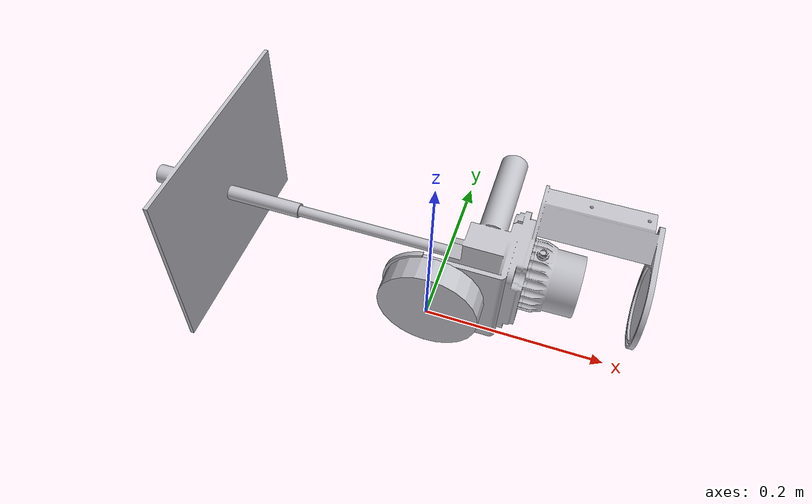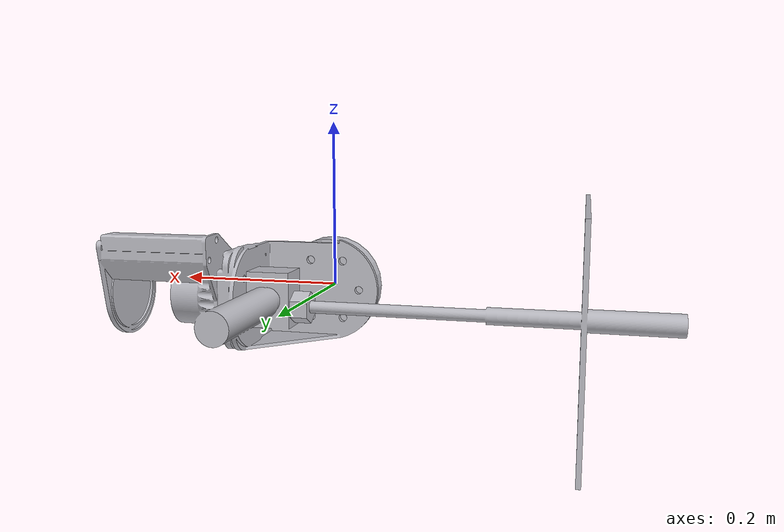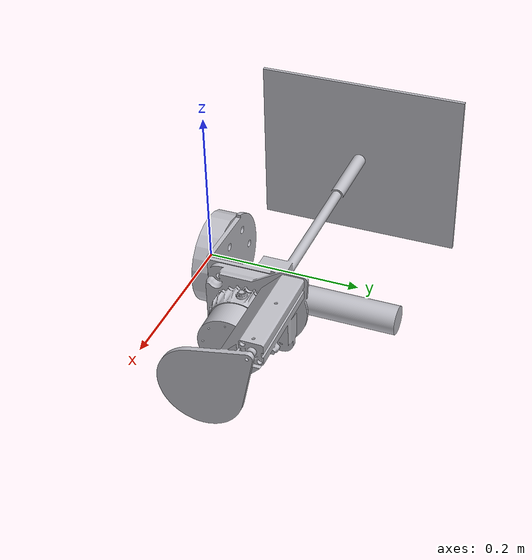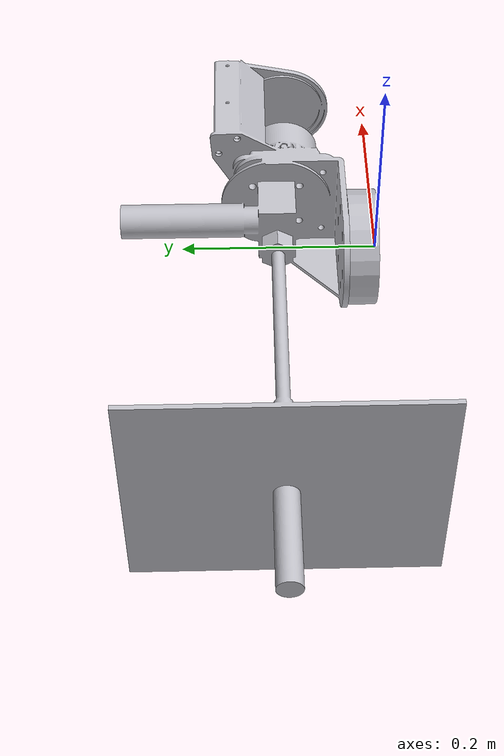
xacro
<?xml version="1.0" ?>
<robot name="Komponente219" xmlns:xacro="http://www.ros.org/wiki/xacro">
  <xacro:macro name="end_effector" params="">
    <link name="lanze">
      <inertial>
        <origin xyz="0.0 0.0 0.0" rpy="0 0 0"/>
        <mass value="0.7246394223310322"/>
        <inertia ixx="0.001157" iyy="0.001395" izz="0.000899" ixy="7e-06" iyz="-0.000147" ixz="-4e-06"/>
      </inertial>
      <visual>
        <origin xyz="0.010351 0.265582  -0.184381" rpy="1.5708 0 0"/>
        <geometry>
          <mesh filename="package://mobile_robco_description/meshes/end_effector/lanze.stl" scale="0.001 0.001 0.001"/>
        </geometry>
        <material name="silver"/>
      </visual>
      <visual>
        <origin xyz="0 0.015 0" rpy="1.5708 0 0"/>
        <geometry>
          <cylinder radius="0.06" length="0.03"/>
        </geometry>
        <material name="silver"/>
      </visual>
      <collision>
        <origin xyz="0.010351 0.265582  -0.184381" rpy="1.5708 0 0"/>
        <geometry>
          <mesh filename="package://mobile_robco_description/meshes/end_effector/lanze.stl" scale="0.001 0.001 0.001"/>
        </geometry>
      </collision>
      <collision>
        <origin xyz="0 0.015 0" rpy="1.5708 0 0"/>
        <geometry>
          <cylinder radius="0.06" length="0.03"/>
        </geometry>
      </collision>
    </link>

    <!-- Tool0 frame (essential for end effector kinematics) -->
    <link name="tool0">
    </link>

    <joint name="lanze-tool0" type="fixed">
      <origin xyz="-0.4767 0.1006 -0.0094" rpy="0 -1.5708 0"/>
      <parent link="lanze"/>
      <child link="tool0"/>
    </joint>

  </xacro:macro>
  <!-- Invoke the End Effector Macro -->
  <xacro:end_effector/>
</robot>
